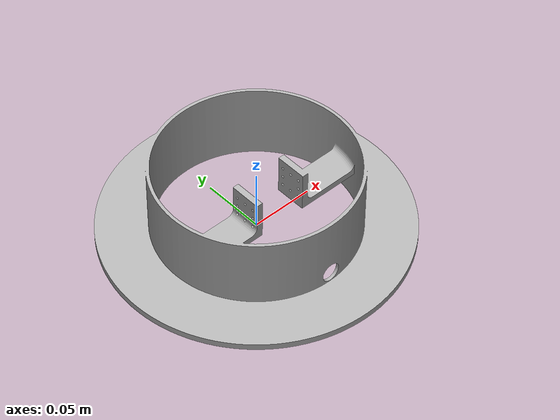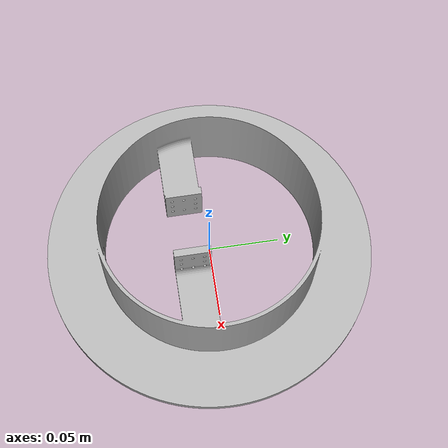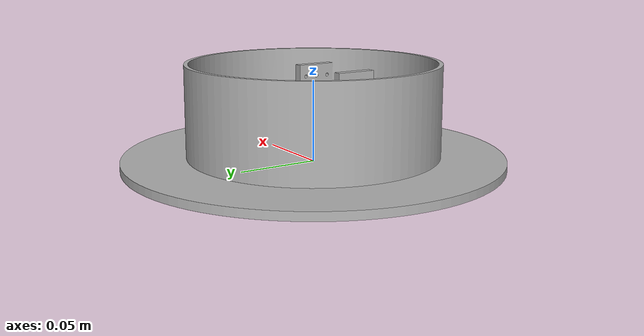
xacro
<?xml version="1.0" ?>
<robot name="mvp_arm_6dof_v4" xmlns:xacro="http://www.ros.org/wiki/xacro">

<xacro:include filename="$(find mvp_arm_6dof_v4_description)/urdf/materials.xacro" />
<xacro:include filename="$(find mvp_arm_6dof_v4_description)/urdf/mvp_arm_6dof_v4.trans" />
<xacro:include filename="$(find mvp_arm_6dof_v4_description)/urdf/mvp_arm_6dof_v4.gazebo" />
<link name="base_link">
  <inertial>
    <origin rpy="0 0 0" xyz="1.5273427923512274e-08 -0.0012615194115251204 0.015200351763726415"/>
    <mass value="1.6606259711147333"/>
    <inertia ixx="0.006748" ixy="0.0" ixz="-0.0" iyy="0.007016" iyz="4.2e-05" izz="0.012699"/>
  </inertial>
  <visual>
    <origin rpy="0 0 0" xyz="0 0 0"/>
    <geometry>
      <mesh filename="package://mvp_arm_6dof_v4_description/meshes/base_link.stl" scale="0.001 0.001 0.001"/>
    </geometry>
    <material name="silver_default"/>
  </visual>
  <collision>
    <origin rpy="0 0 0" xyz="0 0 0"/>
    <geometry>
      <mesh filename="package://mvp_arm_6dof_v4_description/meshes/base_link.stl" scale="0.001 0.001 0.001"/>
    </geometry>
  </collision>
</link>

</robot>

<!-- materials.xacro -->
<robot name="mvp_arm_6dof_v4" xmlns:xacro="http://www.ros.org/wiki/xacro" >

<material name="silver_default">
  <color rgba="0.700 0.700 0.700 1.000"/>
</material>

</robot>

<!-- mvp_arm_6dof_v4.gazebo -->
<robot name="mvp_arm_6dof_v4" xmlns:xacro="http://www.ros.org/wiki/xacro" >

<xacro:property name="body_color" value="Gazebo/Silver" />

<gazebo>
  <plugin filename="libgazebo_ros_control.so" name="control"/>
</gazebo>
<gazebo reference="base_link">
  <material>${body_color}</material>
  <mu1>0.2</mu1>
  <mu2>0.2</mu2>
  <selfCollide>true</selfCollide>
  <gravity>true</gravity>
</gazebo>

</robot>
